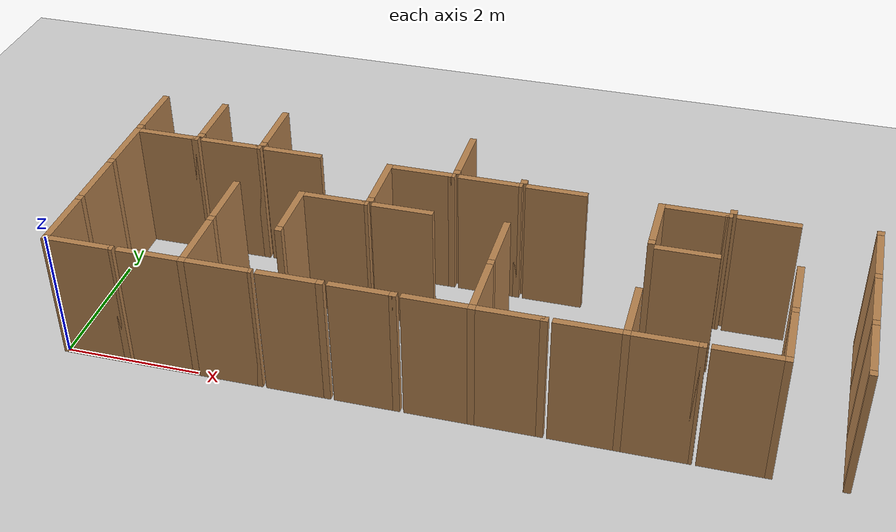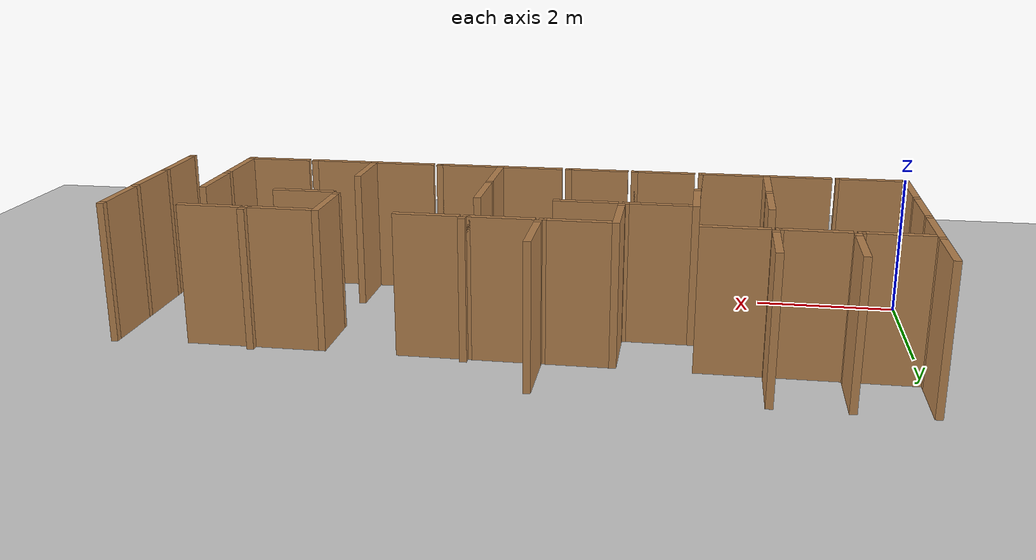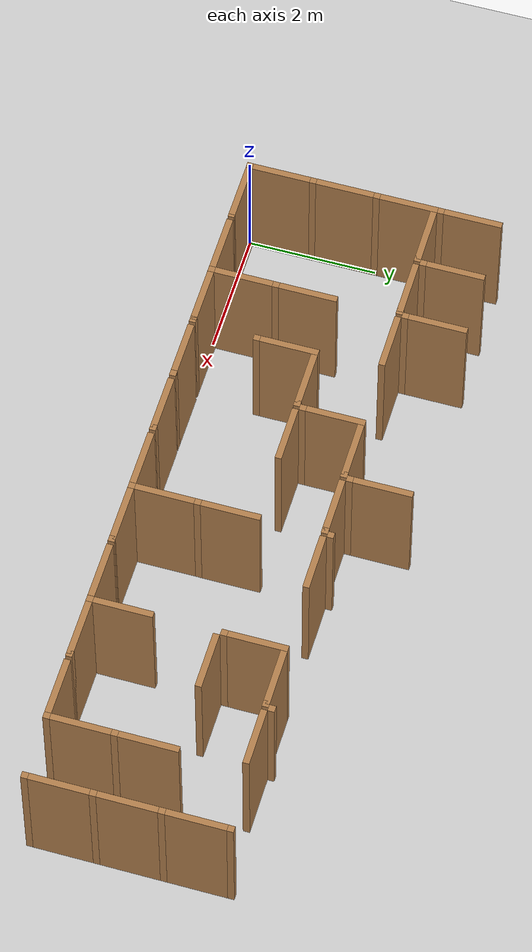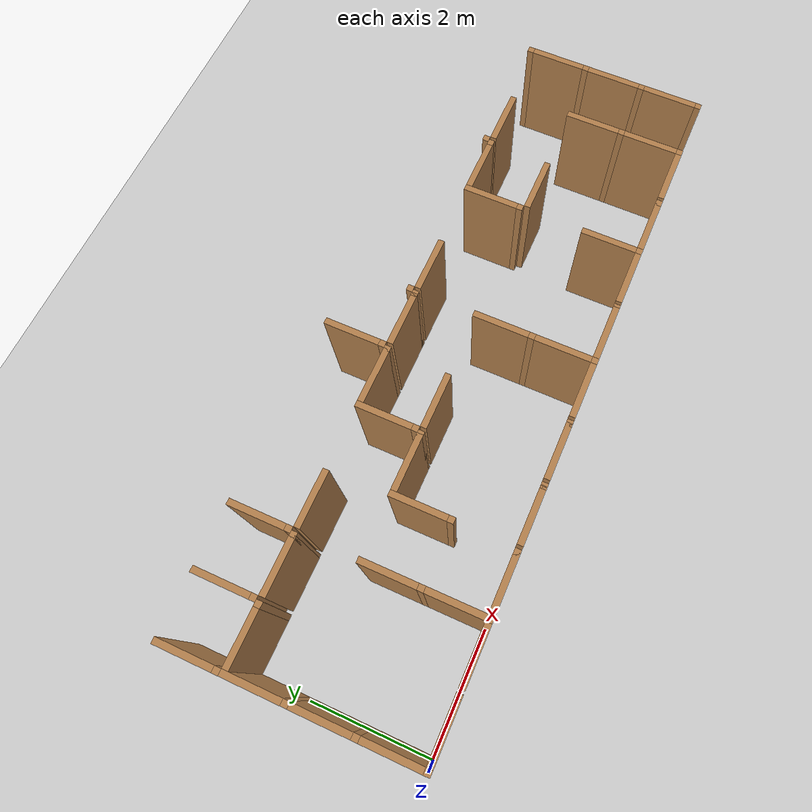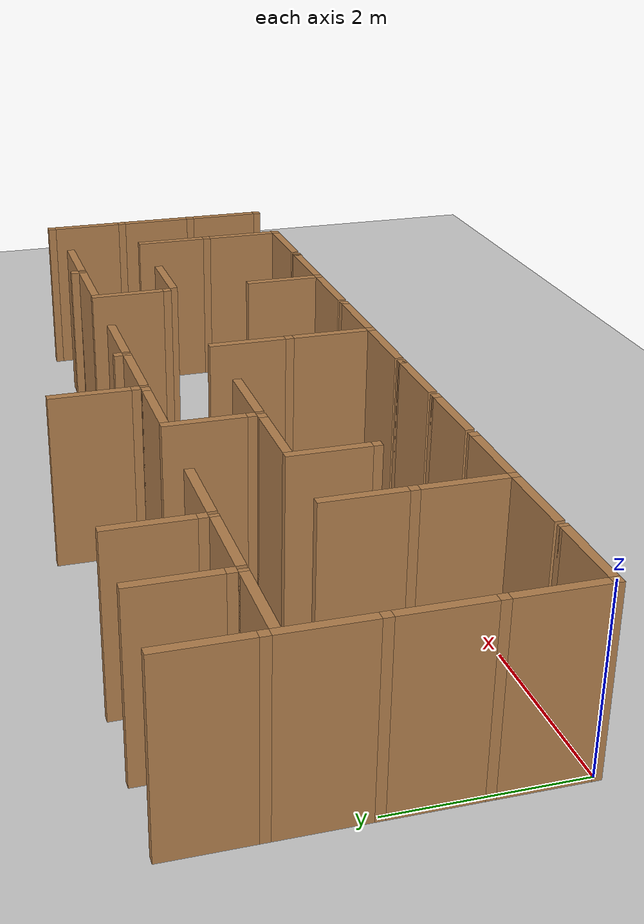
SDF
<sdf version="1.6">
 <world name="default">
  <include><uri>model://sun</uri></include>
  <model name="ground_plane">
   <static>true</static>
   <link name="link">
    <collision name="collision"><geometry><plane><size>12.0 12.0</size></plane></geometry></collision>
    <visual name="visual">
     <cast_shadows>false</cast_shadows>
     <geometry><plane><size>12.0 12.0</size></plane></geometry>
     <material>
      <script><uri>file://media/materials/scripts/gazebo.material</uri><name>Gazebo/Grey</name></script>
     </material>
    </visual>
   </link>
   <pose>6.0 6.0 0 0 0 0</pose>
  </model>
  <model name="vwall_0_0">
   <pose>0.0 0.5 1.0 0 0 0</pose>
   <link name="link">
    <collision name="collision"><geometry><box><size>0.1 0.9 2</size></box></geometry></collision>
    <visual name="visual">
     <geometry><box><size>0.1 0.9 2</size></box></geometry>
     <material>
      <script><uri>file://media/materials/scripts/gazebo.material</uri><name>Gazebo/Wood</name></script>
     </material>
    </visual>
   </link>
  </model>
  <model name="joint_0.0_0.0">
   <pose>0.0 0.0 1.0 0 0 0</pose>
   <link name="link">
    <collision name="collision"><geometry><box><size>0.1 0.1 2</size></box></geometry></collision>
    <visual name="visual">
     <geometry><box><size>0.1 0.1 2</size></box></geometry>
     <material>
      <script><uri>file://media/materials/scripts/gazebo.material</uri><name>Gazebo/Wood</name></script>
     </material>
    </visual>
   </link>
  </model>
  <model name="vwall_0_2">
   <pose>2.0 0.5 1.0 0 0 0</pose>
   <link name="link">
    <collision name="collision"><geometry><box><size>0.1 0.9 2</size></box></geometry></collision>
    <visual name="visual">
     <geometry><box><size>0.1 0.9 2</size></box></geometry>
     <material>
      <script><uri>file://media/materials/scripts/gazebo.material</uri><name>Gazebo/Wood</name></script>
     </material>
    </visual>
   </link>
  </model>
  <model name="joint_2.0_0.0">
   <pose>2.0 0.0 1.0 0 0 0</pose>
   <link name="link">
    <collision name="collision"><geometry><box><size>0.1 0.1 2</size></box></geometry></collision>
    <visual name="visual">
     <geometry><box><size>0.1 0.1 2</size></box></geometry>
     <material>
      <script><uri>file://media/materials/scripts/gazebo.material</uri><name>Gazebo/Wood</name></script>
     </material>
    </visual>
   </link>
  </model>
  <model name="vwall_0_6">
   <pose>6.0 0.5 1.0 0 0 0</pose>
   <link name="link">
    <collision name="collision"><geometry><box><size>0.1 0.9 2</size></box></geometry></collision>
    <visual name="visual">
     <geometry><box><size>0.1 0.9 2</size></box></geometry>
     <material>
      <script><uri>file://media/materials/scripts/gazebo.material</uri><name>Gazebo/Wood</name></script>
     </material>
    </visual>
   </link>
  </model>
  <model name="joint_6.0_0.0">
   <pose>6.0 0.0 1.0 0 0 0</pose>
   <link name="link">
    <collision name="collision"><geometry><box><size>0.1 0.1 2</size></box></geometry></collision>
    <visual name="visual">
     <geometry><box><size>0.1 0.1 2</size></box></geometry>
     <material>
      <script><uri>file://media/materials/scripts/gazebo.material</uri><name>Gazebo/Wood</name></script>
     </material>
    </visual>
   </link>
  </model>
  <model name="vwall_0_8">
   <pose>8.0 0.5 1.0 0 0 0</pose>
   <link name="link">
    <collision name="collision"><geometry><box><size>0.1 0.9 2</size></box></geometry></collision>
    <visual name="visual">
     <geometry><box><size>0.1 0.9 2</size></box></geometry>
     <material>
      <script><uri>file://media/materials/scripts/gazebo.material</uri><name>Gazebo/Wood</name></script>
     </material>
    </visual>
   </link>
  </model>
  <model name="joint_8.0_0.0">
   <pose>8.0 0.0 1.0 0 0 0</pose>
   <link name="link">
    <collision name="collision"><geometry><box><size>0.1 0.1 2</size></box></geometry></collision>
    <visual name="visual">
     <geometry><box><size>0.1 0.1 2</size></box></geometry>
     <material>
      <script><uri>file://media/materials/scripts/gazebo.material</uri><name>Gazebo/Wood</name></script>
     </material>
    </visual>
   </link>
  </model>
  <model name="vwall_0_10">
   <pose>10.0 0.5 1.0 0 0 0</pose>
   <link name="link">
    <collision name="collision"><geometry><box><size>0.1 0.9 2</size></box></geometry></collision>
    <visual name="visual">
     <geometry><box><size>0.1 0.9 2</size></box></geometry>
     <material>
      <script><uri>file://media/materials/scripts/gazebo.material</uri><name>Gazebo/Wood</name></script>
     </material>
    </visual>
   </link>
  </model>
  <model name="joint_10.0_0.0">
   <pose>10.0 0.0 1.0 0 0 0</pose>
   <link name="link">
    <collision name="collision"><geometry><box><size>0.1 0.1 2</size></box></geometry></collision>
    <visual name="visual">
     <geometry><box><size>0.1 0.1 2</size></box></geometry>
     <material>
      <script><uri>file://media/materials/scripts/gazebo.material</uri><name>Gazebo/Wood</name></script>
     </material>
    </visual>
   </link>
  </model>
  <model name="vwall_0_11">
   <pose>11.0 0.5 1.0 0 0 0</pose>
   <link name="link">
    <collision name="collision"><geometry><box><size>0.1 0.9 2</size></box></geometry></collision>
    <visual name="visual">
     <geometry><box><size>0.1 0.9 2</size></box></geometry>
     <material>
      <script><uri>file://media/materials/scripts/gazebo.material</uri><name>Gazebo/Wood</name></script>
     </material>
    </visual>
   </link>
  </model>
  <model name="joint_11.0_0.0">
   <pose>11.0 0.0 1.0 0 0 0</pose>
   <link name="link">
    <collision name="collision"><geometry><box><size>0.1 0.1 2</size></box></geometry></collision>
    <visual name="visual">
     <geometry><box><size>0.1 0.1 2</size></box></geometry>
     <material>
      <script><uri>file://media/materials/scripts/gazebo.material</uri><name>Gazebo/Wood</name></script>
     </material>
    </visual>
   </link>
  </model>
  <model name="vwall_1_0">
   <pose>0.0 1.5 1.0 0 0 0</pose>
   <link name="link">
    <collision name="collision"><geometry><box><size>0.1 0.9 2</size></box></geometry></collision>
    <visual name="visual">
     <geometry><box><size>0.1 0.9 2</size></box></geometry>
     <material>
      <script><uri>file://media/materials/scripts/gazebo.material</uri><name>Gazebo/Wood</name></script>
     </material>
    </visual>
   </link>
  </model>
  <model name="joint_0.0_-1.0">
   <pose>0.0 1.0 1.0 0 0 0</pose>
   <link name="link">
    <collision name="collision"><geometry><box><size>0.1 0.1 2</size></box></geometry></collision>
    <visual name="visual">
     <geometry><box><size>0.1 0.1 2</size></box></geometry>
     <material>
      <script><uri>file://media/materials/scripts/gazebo.material</uri><name>Gazebo/Wood</name></script>
     </material>
    </visual>
   </link>
  </model>
  <model name="vwall_1_2">
   <pose>2.0 1.5 1.0 0 0 0</pose>
   <link name="link">
    <collision name="collision"><geometry><box><size>0.1 0.9 2</size></box></geometry></collision>
    <visual name="visual">
     <geometry><box><size>0.1 0.9 2</size></box></geometry>
     <material>
      <script><uri>file://media/materials/scripts/gazebo.material</uri><name>Gazebo/Wood</name></script>
     </material>
    </visual>
   </link>
  </model>
  <model name="joint_2.0_-1.0">
   <pose>2.0 1.0 1.0 0 0 0</pose>
   <link name="link">
    <collision name="collision"><geometry><box><size>0.1 0.1 2</size></box></geometry></collision>
    <visual name="visual">
     <geometry><box><size>0.1 0.1 2</size></box></geometry>
     <material>
      <script><uri>file://media/materials/scripts/gazebo.material</uri><name>Gazebo/Wood</name></script>
     </material>
    </visual>
   </link>
  </model>
  <model name="vwall_1_3">
   <pose>3.0 1.5 1.0 0 0 0</pose>
   <link name="link">
    <collision name="collision"><geometry><box><size>0.1 0.9 2</size></box></geometry></collision>
    <visual name="visual">
     <geometry><box><size>0.1 0.9 2</size></box></geometry>
     <material>
      <script><uri>file://media/materials/scripts/gazebo.material</uri><name>Gazebo/Wood</name></script>
     </material>
    </visual>
   </link>
  </model>
  <model name="joint_3.0_-1.0">
   <pose>3.0 1.0 1.0 0 0 0</pose>
   <link name="link">
    <collision name="collision"><geometry><box><size>0.1 0.1 2</size></box></geometry></collision>
    <visual name="visual">
     <geometry><box><size>0.1 0.1 2</size></box></geometry>
     <material>
      <script><uri>file://media/materials/scripts/gazebo.material</uri><name>Gazebo/Wood</name></script>
     </material>
    </visual>
   </link>
  </model>
  <model name="vwall_1_6">
   <pose>6.0 1.5 1.0 0 0 0</pose>
   <link name="link">
    <collision name="collision"><geometry><box><size>0.1 0.9 2</size></box></geometry></collision>
    <visual name="visual">
     <geometry><box><size>0.1 0.9 2</size></box></geometry>
     <material>
      <script><uri>file://media/materials/scripts/gazebo.material</uri><name>Gazebo/Wood</name></script>
     </material>
    </visual>
   </link>
  </model>
  <model name="joint_6.0_-1.0">
   <pose>6.0 1.0 1.0 0 0 0</pose>
   <link name="link">
    <collision name="collision"><geometry><box><size>0.1 0.1 2</size></box></geometry></collision>
    <visual name="visual">
     <geometry><box><size>0.1 0.1 2</size></box></geometry>
     <material>
      <script><uri>file://media/materials/scripts/gazebo.material</uri><name>Gazebo/Wood</name></script>
     </material>
    </visual>
   </link>
  </model>
  <model name="vwall_1_10">
   <pose>10.0 1.5 1.0 0 0 0</pose>
   <link name="link">
    <collision name="collision"><geometry><box><size>0.1 0.9 2</size></box></geometry></collision>
    <visual name="visual">
     <geometry><box><size>0.1 0.9 2</size></box></geometry>
     <material>
      <script><uri>file://media/materials/scripts/gazebo.material</uri><name>Gazebo/Wood</name></script>
     </material>
    </visual>
   </link>
  </model>
  <model name="joint_10.0_-1.0">
   <pose>10.0 1.0 1.0 0 0 0</pose>
   <link name="link">
    <collision name="collision"><geometry><box><size>0.1 0.1 2</size></box></geometry></collision>
    <visual name="visual">
     <geometry><box><size>0.1 0.1 2</size></box></geometry>
     <material>
      <script><uri>file://media/materials/scripts/gazebo.material</uri><name>Gazebo/Wood</name></script>
     </material>
    </visual>
   </link>
  </model>
  <model name="vwall_1_11">
   <pose>11.0 1.5 1.0 0 0 0</pose>
   <link name="link">
    <collision name="collision"><geometry><box><size>0.1 0.9 2</size></box></geometry></collision>
    <visual name="visual">
     <geometry><box><size>0.1 0.9 2</size></box></geometry>
     <material>
      <script><uri>file://media/materials/scripts/gazebo.material</uri><name>Gazebo/Wood</name></script>
     </material>
    </visual>
   </link>
  </model>
  <model name="joint_11.0_-1.0">
   <pose>11.0 1.0 1.0 0 0 0</pose>
   <link name="link">
    <collision name="collision"><geometry><box><size>0.1 0.1 2</size></box></geometry></collision>
    <visual name="visual">
     <geometry><box><size>0.1 0.1 2</size></box></geometry>
     <material>
      <script><uri>file://media/materials/scripts/gazebo.material</uri><name>Gazebo/Wood</name></script>
     </material>
    </visual>
   </link>
  </model>
  <model name="vwall_2_0">
   <pose>0.0 2.5 1.0 0 0 0</pose>
   <link name="link">
    <collision name="collision"><geometry><box><size>0.1 0.9 2</size></box></geometry></collision>
    <visual name="visual">
     <geometry><box><size>0.1 0.9 2</size></box></geometry>
     <material>
      <script><uri>file://media/materials/scripts/gazebo.material</uri><name>Gazebo/Wood</name></script>
     </material>
    </visual>
   </link>
  </model>
  <model name="joint_0.0_-2.0">
   <pose>0.0 2.0 1.0 0 0 0</pose>
   <link name="link">
    <collision name="collision"><geometry><box><size>0.1 0.1 2</size></box></geometry></collision>
    <visual name="visual">
     <geometry><box><size>0.1 0.1 2</size></box></geometry>
     <material>
      <script><uri>file://media/materials/scripts/gazebo.material</uri><name>Gazebo/Wood</name></script>
     </material>
    </visual>
   </link>
  </model>
  <model name="vwall_2_4">
   <pose>4.0 2.5 1.0 0 0 0</pose>
   <link name="link">
    <collision name="collision"><geometry><box><size>0.1 0.9 2</size></box></geometry></collision>
    <visual name="visual">
     <geometry><box><size>0.1 0.9 2</size></box></geometry>
     <material>
      <script><uri>file://media/materials/scripts/gazebo.material</uri><name>Gazebo/Wood</name></script>
     </material>
    </visual>
   </link>
  </model>
  <model name="joint_4.0_-2.0">
   <pose>4.0 2.0 1.0 0 0 0</pose>
   <link name="link">
    <collision name="collision"><geometry><box><size>0.1 0.1 2</size></box></geometry></collision>
    <visual name="visual">
     <geometry><box><size>0.1 0.1 2</size></box></geometry>
     <material>
      <script><uri>file://media/materials/scripts/gazebo.material</uri><name>Gazebo/Wood</name></script>
     </material>
    </visual>
   </link>
  </model>
  <model name="vwall_2_8">
   <pose>8.0 2.5 1.0 0 0 0</pose>
   <link name="link">
    <collision name="collision"><geometry><box><size>0.1 0.9 2</size></box></geometry></collision>
    <visual name="visual">
     <geometry><box><size>0.1 0.9 2</size></box></geometry>
     <material>
      <script><uri>file://media/materials/scripts/gazebo.material</uri><name>Gazebo/Wood</name></script>
     </material>
    </visual>
   </link>
  </model>
  <model name="joint_8.0_-2.0">
   <pose>8.0 2.0 1.0 0 0 0</pose>
   <link name="link">
    <collision name="collision"><geometry><box><size>0.1 0.1 2</size></box></geometry></collision>
    <visual name="visual">
     <geometry><box><size>0.1 0.1 2</size></box></geometry>
     <material>
      <script><uri>file://media/materials/scripts/gazebo.material</uri><name>Gazebo/Wood</name></script>
     </material>
    </visual>
   </link>
  </model>
  <model name="vwall_2_11">
   <pose>11.0 2.5 1.0 0 0 0</pose>
   <link name="link">
    <collision name="collision"><geometry><box><size>0.1 0.9 2</size></box></geometry></collision>
    <visual name="visual">
     <geometry><box><size>0.1 0.9 2</size></box></geometry>
     <material>
      <script><uri>file://media/materials/scripts/gazebo.material</uri><name>Gazebo/Wood</name></script>
     </material>
    </visual>
   </link>
  </model>
  <model name="joint_11.0_-2.0">
   <pose>11.0 2.0 1.0 0 0 0</pose>
   <link name="link">
    <collision name="collision"><geometry><box><size>0.1 0.1 2</size></box></geometry></collision>
    <visual name="visual">
     <geometry><box><size>0.1 0.1 2</size></box></geometry>
     <material>
      <script><uri>file://media/materials/scripts/gazebo.material</uri><name>Gazebo/Wood</name></script>
     </material>
    </visual>
   </link>
  </model>
  <model name="vwall_3_0">
   <pose>0.0 3.5 1.0 0 0 0</pose>
   <link name="link">
    <collision name="collision"><geometry><box><size>0.1 0.9 2</size></box></geometry></collision>
    <visual name="visual">
     <geometry><box><size>0.1 0.9 2</size></box></geometry>
     <material>
      <script><uri>file://media/materials/scripts/gazebo.material</uri><name>Gazebo/Wood</name></script>
     </material>
    </visual>
   </link>
  </model>
  <model name="joint_0.0_-3.0">
   <pose>0.0 3.0 1.0 0 0 0</pose>
   <link name="link">
    <collision name="collision"><geometry><box><size>0.1 0.1 2</size></box></geometry></collision>
    <visual name="visual">
     <geometry><box><size>0.1 0.1 2</size></box></geometry>
     <material>
      <script><uri>file://media/materials/scripts/gazebo.material</uri><name>Gazebo/Wood</name></script>
     </material>
    </visual>
   </link>
  </model>
  <model name="vwall_3_1">
   <pose>1.0 3.5 1.0 0 0 0</pose>
   <link name="link">
    <collision name="collision"><geometry><box><size>0.1 0.9 2</size></box></geometry></collision>
    <visual name="visual">
     <geometry><box><size>0.1 0.9 2</size></box></geometry>
     <material>
      <script><uri>file://media/materials/scripts/gazebo.material</uri><name>Gazebo/Wood</name></script>
     </material>
    </visual>
   </link>
  </model>
  <model name="joint_1.0_-3.0">
   <pose>1.0 3.0 1.0 0 0 0</pose>
   <link name="link">
    <collision name="collision"><geometry><box><size>0.1 0.1 2</size></box></geometry></collision>
    <visual name="visual">
     <geometry><box><size>0.1 0.1 2</size></box></geometry>
     <material>
      <script><uri>file://media/materials/scripts/gazebo.material</uri><name>Gazebo/Wood</name></script>
     </material>
    </visual>
   </link>
  </model>
  <model name="vwall_3_2">
   <pose>2.0 3.5 1.0 0 0 0</pose>
   <link name="link">
    <collision name="collision"><geometry><box><size>0.1 0.9 2</size></box></geometry></collision>
    <visual name="visual">
     <geometry><box><size>0.1 0.9 2</size></box></geometry>
     <material>
      <script><uri>file://media/materials/scripts/gazebo.material</uri><name>Gazebo/Wood</name></script>
     </material>
    </visual>
   </link>
  </model>
  <model name="joint_2.0_-3.0">
   <pose>2.0 3.0 1.0 0 0 0</pose>
   <link name="link">
    <collision name="collision"><geometry><box><size>0.1 0.1 2</size></box></geometry></collision>
    <visual name="visual">
     <geometry><box><size>0.1 0.1 2</size></box></geometry>
     <material>
      <script><uri>file://media/materials/scripts/gazebo.material</uri><name>Gazebo/Wood</name></script>
     </material>
    </visual>
   </link>
  </model>
  <model name="vwall_3_5">
   <pose>5.0 3.5 1.0 0 0 0</pose>
   <link name="link">
    <collision name="collision"><geometry><box><size>0.1 0.9 2</size></box></geometry></collision>
    <visual name="visual">
     <geometry><box><size>0.1 0.9 2</size></box></geometry>
     <material>
      <script><uri>file://media/materials/scripts/gazebo.material</uri><name>Gazebo/Wood</name></script>
     </material>
    </visual>
   </link>
  </model>
  <model name="joint_5.0_-3.0">
   <pose>5.0 3.0 1.0 0 0 0</pose>
   <link name="link">
    <collision name="collision"><geometry><box><size>0.1 0.1 2</size></box></geometry></collision>
    <visual name="visual">
     <geometry><box><size>0.1 0.1 2</size></box></geometry>
     <material>
      <script><uri>file://media/materials/scripts/gazebo.material</uri><name>Gazebo/Wood</name></script>
     </material>
    </visual>
   </link>
  </model>
  <model name="joint_6.0_-3.0">
   <pose>6.0 3.0 1.0 0 0 0</pose>
   <link name="link">
    <collision name="collision"><geometry><box><size>0.1 0.1 2</size></box></geometry></collision>
    <visual name="visual">
     <geometry><box><size>0.1 0.1 2</size></box></geometry>
     <material>
      <script><uri>file://media/materials/scripts/gazebo.material</uri><name>Gazebo/Wood</name></script>
     </material>
    </visual>
   </link>
  </model>
  <model name="joint_9.0_-3.0">
   <pose>9.0 3.0 1.0 0 0 0</pose>
   <link name="link">
    <collision name="collision"><geometry><box><size>0.1 0.1 2</size></box></geometry></collision>
    <visual name="visual">
     <geometry><box><size>0.1 0.1 2</size></box></geometry>
     <material>
      <script><uri>file://media/materials/scripts/gazebo.material</uri><name>Gazebo/Wood</name></script>
     </material>
    </visual>
   </link>
  </model>
  <model name="joint_11.0_-3.0">
   <pose>11.0 3.0 1.0 0 0 0</pose>
   <link name="link">
    <collision name="collision"><geometry><box><size>0.1 0.1 2</size></box></geometry></collision>
    <visual name="visual">
     <geometry><box><size>0.1 0.1 2</size></box></geometry>
     <material>
      <script><uri>file://media/materials/scripts/gazebo.material</uri><name>Gazebo/Wood</name></script>
     </material>
    </visual>
   </link>
  </model>
  <model name="hwall_0_0">
   <pose>0.5 0.0 1.0 0 0 0</pose>
   <link name="link">
    <collision name="collision"><geometry><box><size>0.9 0.1 2</size></box></geometry></collision>
    <visual name="visual">
     <geometry><box><size>0.9 0.1 2</size></box></geometry>
     <material>
      <script><uri>file://media/materials/scripts/gazebo.material</uri><name>Gazebo/Wood</name></script>
     </material>
    </visual>
   </link>
  </model>
  <model name="joint_0.95_0.0">
   <pose>0.95 0.0 1.0 0 0 0</pose>
   <link name="link">
    <collision name="collision"><geometry><box><size>0.1 0.1 2</size></box></geometry></collision>
    <visual name="visual">
     <geometry><box><size>0.1 0.1 2</size></box></geometry>
     <material>
      <script><uri>file://media/materials/scripts/gazebo.material</uri><name>Gazebo/Wood</name></script>
     </material>
    </visual>
   </link>
  </model>
  <model name="hwall_0_1">
   <pose>1.5 0.0 1.0 0 0 0</pose>
   <link name="link">
    <collision name="collision"><geometry><box><size>0.9 0.1 2</size></box></geometry></collision>
    <visual name="visual">
     <geometry><box><size>0.9 0.1 2</size></box></geometry>
     <material>
      <script><uri>file://media/materials/scripts/gazebo.material</uri><name>Gazebo/Wood</name></script>
     </material>
    </visual>
   </link>
  </model>
  <model name="hwall_0_2">
   <pose>2.5 0.0 1.0 0 0 0</pose>
   <link name="link">
    <collision name="collision"><geometry><box><size>0.9 0.1 2</size></box></geometry></collision>
    <visual name="visual">
     <geometry><box><size>0.9 0.1 2</size></box></geometry>
     <material>
      <script><uri>file://media/materials/scripts/gazebo.material</uri><name>Gazebo/Wood</name></script>
     </material>
    </visual>
   </link>
  </model>
  <model name="joint_2.95_0.0">
   <pose>2.95 0.0 1.0 0 0 0</pose>
   <link name="link">
    <collision name="collision"><geometry><box><size>0.1 0.1 2</size></box></geometry></collision>
    <visual name="visual">
     <geometry><box><size>0.1 0.1 2</size></box></geometry>
     <material>
      <script><uri>file://media/materials/scripts/gazebo.material</uri><name>Gazebo/Wood</name></script>
     </material>
    </visual>
   </link>
  </model>
  <model name="hwall_0_3">
   <pose>3.5 0.0 1.0 0 0 0</pose>
   <link name="link">
    <collision name="collision"><geometry><box><size>0.9 0.1 2</size></box></geometry></collision>
    <visual name="visual">
     <geometry><box><size>0.9 0.1 2</size></box></geometry>
     <material>
      <script><uri>file://media/materials/scripts/gazebo.material</uri><name>Gazebo/Wood</name></script>
     </material>
    </visual>
   </link>
  </model>
  <model name="joint_3.95_0.0">
   <pose>3.95 0.0 1.0 0 0 0</pose>
   <link name="link">
    <collision name="collision"><geometry><box><size>0.1 0.1 2</size></box></geometry></collision>
    <visual name="visual">
     <geometry><box><size>0.1 0.1 2</size></box></geometry>
     <material>
      <script><uri>file://media/materials/scripts/gazebo.material</uri><name>Gazebo/Wood</name></script>
     </material>
    </visual>
   </link>
  </model>
  <model name="hwall_0_4">
   <pose>4.5 0.0 1.0 0 0 0</pose>
   <link name="link">
    <collision name="collision"><geometry><box><size>0.9 0.1 2</size></box></geometry></collision>
    <visual name="visual">
     <geometry><box><size>0.9 0.1 2</size></box></geometry>
     <material>
      <script><uri>file://media/materials/scripts/gazebo.material</uri><name>Gazebo/Wood</name></script>
     </material>
    </visual>
   </link>
  </model>
  <model name="joint_4.95_0.0">
   <pose>4.95 0.0 1.0 0 0 0</pose>
   <link name="link">
    <collision name="collision"><geometry><box><size>0.1 0.1 2</size></box></geometry></collision>
    <visual name="visual">
     <geometry><box><size>0.1 0.1 2</size></box></geometry>
     <material>
      <script><uri>file://media/materials/scripts/gazebo.material</uri><name>Gazebo/Wood</name></script>
     </material>
    </visual>
   </link>
  </model>
  <model name="hwall_0_5">
   <pose>5.5 0.0 1.0 0 0 0</pose>
   <link name="link">
    <collision name="collision"><geometry><box><size>0.9 0.1 2</size></box></geometry></collision>
    <visual name="visual">
     <geometry><box><size>0.9 0.1 2</size></box></geometry>
     <material>
      <script><uri>file://media/materials/scripts/gazebo.material</uri><name>Gazebo/Wood</name></script>
     </material>
    </visual>
   </link>
  </model>
  <model name="hwall_0_6">
   <pose>6.5 0.0 1.0 0 0 0</pose>
   <link name="link">
    <collision name="collision"><geometry><box><size>0.9 0.1 2</size></box></geometry></collision>
    <visual name="visual">
     <geometry><box><size>0.9 0.1 2</size></box></geometry>
     <material>
      <script><uri>file://media/materials/scripts/gazebo.material</uri><name>Gazebo/Wood</name></script>
     </material>
    </visual>
   </link>
  </model>
  <model name="joint_6.95_0.0">
   <pose>6.95 0.0 1.0 0 0 0</pose>
   <link name="link">
    <collision name="collision"><geometry><box><size>0.1 0.1 2</size></box></geometry></collision>
    <visual name="visual">
     <geometry><box><size>0.1 0.1 2</size></box></geometry>
     <material>
      <script><uri>file://media/materials/scripts/gazebo.material</uri><name>Gazebo/Wood</name></script>
     </material>
    </visual>
   </link>
  </model>
  <model name="hwall_0_7">
   <pose>7.5 0.0 1.0 0 0 0</pose>
   <link name="link">
    <collision name="collision"><geometry><box><size>0.9 0.1 2</size></box></geometry></collision>
    <visual name="visual">
     <geometry><box><size>0.9 0.1 2</size></box></geometry>
     <material>
      <script><uri>file://media/materials/scripts/gazebo.material</uri><name>Gazebo/Wood</name></script>
     </material>
    </visual>
   </link>
  </model>
  <model name="hwall_0_8">
   <pose>8.5 0.0 1.0 0 0 0</pose>
   <link name="link">
    <collision name="collision"><geometry><box><size>0.9 0.1 2</size></box></geometry></collision>
    <visual name="visual">
     <geometry><box><size>0.9 0.1 2</size></box></geometry>
     <material>
      <script><uri>file://media/materials/scripts/gazebo.material</uri><name>Gazebo/Wood</name></script>
     </material>
    </visual>
   </link>
  </model>
  <model name="joint_8.95_0.0">
   <pose>8.95 0.0 1.0 0 0 0</pose>
   <link name="link">
    <collision name="collision"><geometry><box><size>0.1 0.1 2</size></box></geometry></collision>
    <visual name="visual">
     <geometry><box><size>0.1 0.1 2</size></box></geometry>
     <material>
      <script><uri>file://media/materials/scripts/gazebo.material</uri><name>Gazebo/Wood</name></script>
     </material>
    </visual>
   </link>
  </model>
  <model name="hwall_0_9">
   <pose>9.5 0.0 1.0 0 0 0</pose>
   <link name="link">
    <collision name="collision"><geometry><box><size>0.9 0.1 2</size></box></geometry></collision>
    <visual name="visual">
     <geometry><box><size>0.9 0.1 2</size></box></geometry>
     <material>
      <script><uri>file://media/materials/scripts/gazebo.material</uri><name>Gazebo/Wood</name></script>
     </material>
    </visual>
   </link>
  </model>
  <model name="hwall_1_3">
   <pose>3.5 1.9 1.0 0 0 0</pose>
   <link name="link">
    <collision name="collision"><geometry><box><size>0.9 0.1 2</size></box></geometry></collision>
    <visual name="visual">
     <geometry><box><size>0.9 0.1 2</size></box></geometry>
     <material>
      <script><uri>file://media/materials/scripts/gazebo.material</uri><name>Gazebo/Wood</name></script>
     </material>
    </visual>
   </link>
  </model>
  <model name="joint_3.95_-1.9">
   <pose>3.95 1.9 1.0 0 0 0</pose>
   <link name="link">
    <collision name="collision"><geometry><box><size>0.1 0.1 2</size></box></geometry></collision>
    <visual name="visual">
     <geometry><box><size>0.1 0.1 2</size></box></geometry>
     <material>
      <script><uri>file://media/materials/scripts/gazebo.material</uri><name>Gazebo/Wood</name></script>
     </material>
    </visual>
   </link>
  </model>
  <model name="hwall_1_4">
   <pose>4.5 1.9 1.0 0 0 0</pose>
   <link name="link">
    <collision name="collision"><geometry><box><size>0.9 0.1 2</size></box></geometry></collision>
    <visual name="visual">
     <geometry><box><size>0.9 0.1 2</size></box></geometry>
     <material>
      <script><uri>file://media/materials/scripts/gazebo.material</uri><name>Gazebo/Wood</name></script>
     </material>
    </visual>
   </link>
  </model>
  <model name="hwall_1_8">
   <pose>8.5 1.9 1.0 0 0 0</pose>
   <link name="link">
    <collision name="collision"><geometry><box><size>0.9 0.1 2</size></box></geometry></collision>
    <visual name="visual">
     <geometry><box><size>0.9 0.1 2</size></box></geometry>
     <material>
      <script><uri>file://media/materials/scripts/gazebo.material</uri><name>Gazebo/Wood</name></script>
     </material>
    </visual>
   </link>
  </model>
  <model name="hwall_2_0">
   <pose>0.5 2.9 1.0 0 0 0</pose>
   <link name="link">
    <collision name="collision"><geometry><box><size>0.9 0.1 2</size></box></geometry></collision>
    <visual name="visual">
     <geometry><box><size>0.9 0.1 2</size></box></geometry>
     <material>
      <script><uri>file://media/materials/scripts/gazebo.material</uri><name>Gazebo/Wood</name></script>
     </material>
    </visual>
   </link>
  </model>
  <model name="joint_0.95_-2.9">
   <pose>0.95 2.9 1.0 0 0 0</pose>
   <link name="link">
    <collision name="collision"><geometry><box><size>0.1 0.1 2</size></box></geometry></collision>
    <visual name="visual">
     <geometry><box><size>0.1 0.1 2</size></box></geometry>
     <material>
      <script><uri>file://media/materials/scripts/gazebo.material</uri><name>Gazebo/Wood</name></script>
     </material>
    </visual>
   </link>
  </model>
  <model name="hwall_2_1">
   <pose>1.5 2.9 1.0 0 0 0</pose>
   <link name="link">
    <collision name="collision"><geometry><box><size>0.9 0.1 2</size></box></geometry></collision>
    <visual name="visual">
     <geometry><box><size>0.9 0.1 2</size></box></geometry>
     <material>
      <script><uri>file://media/materials/scripts/gazebo.material</uri><name>Gazebo/Wood</name></script>
     </material>
    </visual>
   </link>
  </model>
  <model name="joint_1.95_-2.9">
   <pose>1.95 2.9 1.0 0 0 0</pose>
   <link name="link">
    <collision name="collision"><geometry><box><size>0.1 0.1 2</size></box></geometry></collision>
    <visual name="visual">
     <geometry><box><size>0.1 0.1 2</size></box></geometry>
     <material>
      <script><uri>file://media/materials/scripts/gazebo.material</uri><name>Gazebo/Wood</name></script>
     </material>
    </visual>
   </link>
  </model>
  <model name="hwall_2_2">
   <pose>2.5 2.9 1.0 0 0 0</pose>
   <link name="link">
    <collision name="collision"><geometry><box><size>0.9 0.1 2</size></box></geometry></collision>
    <visual name="visual">
     <geometry><box><size>0.9 0.1 2</size></box></geometry>
     <material>
      <script><uri>file://media/materials/scripts/gazebo.material</uri><name>Gazebo/Wood</name></script>
     </material>
    </visual>
   </link>
  </model>
  <model name="hwall_2_4">
   <pose>4.5 2.9 1.0 0 0 0</pose>
   <link name="link">
    <collision name="collision"><geometry><box><size>0.9 0.1 2</size></box></geometry></collision>
    <visual name="visual">
     <geometry><box><size>0.9 0.1 2</size></box></geometry>
     <material>
      <script><uri>file://media/materials/scripts/gazebo.material</uri><name>Gazebo/Wood</name></script>
     </material>
    </visual>
   </link>
  </model>
  <model name="joint_4.95_-2.9">
   <pose>4.95 2.9 1.0 0 0 0</pose>
   <link name="link">
    <collision name="collision"><geometry><box><size>0.1 0.1 2</size></box></geometry></collision>
    <visual name="visual">
     <geometry><box><size>0.1 0.1 2</size></box></geometry>
     <material>
      <script><uri>file://media/materials/scripts/gazebo.material</uri><name>Gazebo/Wood</name></script>
     </material>
    </visual>
   </link>
  </model>
  <model name="hwall_2_5">
   <pose>5.5 2.9 1.0 0 0 0</pose>
   <link name="link">
    <collision name="collision"><geometry><box><size>0.9 0.1 2</size></box></geometry></collision>
    <visual name="visual">
     <geometry><box><size>0.9 0.1 2</size></box></geometry>
     <material>
      <script><uri>file://media/materials/scripts/gazebo.material</uri><name>Gazebo/Wood</name></script>
     </material>
    </visual>
   </link>
  </model>
  <model name="joint_5.95_-2.9">
   <pose>5.95 2.9 1.0 0 0 0</pose>
   <link name="link">
    <collision name="collision"><geometry><box><size>0.1 0.1 2</size></box></geometry></collision>
    <visual name="visual">
     <geometry><box><size>0.1 0.1 2</size></box></geometry>
     <material>
      <script><uri>file://media/materials/scripts/gazebo.material</uri><name>Gazebo/Wood</name></script>
     </material>
    </visual>
   </link>
  </model>
  <model name="hwall_2_6">
   <pose>6.5 2.9 1.0 0 0 0</pose>
   <link name="link">
    <collision name="collision"><geometry><box><size>0.9 0.1 2</size></box></geometry></collision>
    <visual name="visual">
     <geometry><box><size>0.9 0.1 2</size></box></geometry>
     <material>
      <script><uri>file://media/materials/scripts/gazebo.material</uri><name>Gazebo/Wood</name></script>
     </material>
    </visual>
   </link>
  </model>
  <model name="hwall_2_8">
   <pose>8.5 2.9 1.0 0 0 0</pose>
   <link name="link">
    <collision name="collision"><geometry><box><size>0.9 0.1 2</size></box></geometry></collision>
    <visual name="visual">
     <geometry><box><size>0.9 0.1 2</size></box></geometry>
     <material>
      <script><uri>file://media/materials/scripts/gazebo.material</uri><name>Gazebo/Wood</name></script>
     </material>
    </visual>
   </link>
  </model>
  <model name="joint_8.95_-2.9">
   <pose>8.95 2.9 1.0 0 0 0</pose>
   <link name="link">
    <collision name="collision"><geometry><box><size>0.1 0.1 2</size></box></geometry></collision>
    <visual name="visual">
     <geometry><box><size>0.1 0.1 2</size></box></geometry>
     <material>
      <script><uri>file://media/materials/scripts/gazebo.material</uri><name>Gazebo/Wood</name></script>
     </material>
    </visual>
   </link>
  </model>
  <model name="hwall_2_9">
   <pose>9.5 2.9 1.0 0 0 0</pose>
   <link name="link">
    <collision name="collision"><geometry><box><size>0.9 0.1 2</size></box></geometry></collision>
    <visual name="visual">
     <geometry><box><size>0.9 0.1 2</size></box></geometry>
     <material>
      <script><uri>file://media/materials/scripts/gazebo.material</uri><name>Gazebo/Wood</name></script>
     </material>
    </visual>
   </link>
  </model>
 </world>
</sdf>
